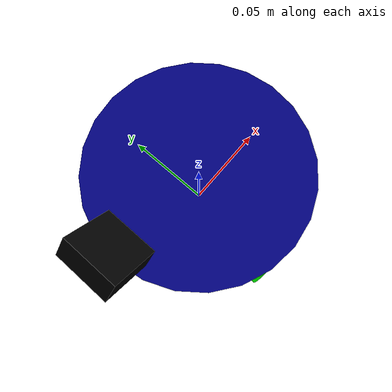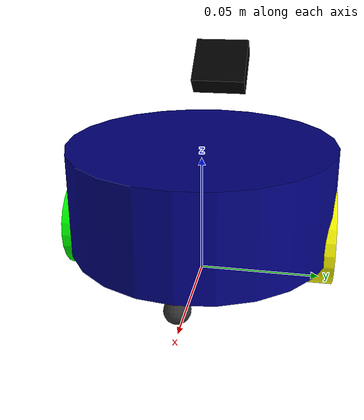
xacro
<?xml version="1.0"?>
<robot xmlns:xacro="http://www.ros.org/wiki/xacro" name="robot">

    <xacro:include filename="inertial_macros.xacro" />

    <!-- Robot body -->
    <xacro:property name="chassis_radius" value="0.055" />
    <xacro:property name="chassis_height" value="0.042" />
    <xacro:property name="chassis_elevation" value="0.015" />
    <xacro:property name="chassis_mass" value="0.3" />

    <!-- Robot wheels-->
    <!-- wheel_offset - how far, from the back, the wheel centre should be -->
    <xacro:property name="wheel_radius" value="0.02" />
    <xacro:property name="wheel_length" value="0.02" />
    <xacro:property name="wheel_mass" value="0.025" />

    <!-- Caster wheel -->
    <xacro:property name="caster_offset" value="0.05" />
    <xacro:property name="caster_radius" value="0.005" />
    <xacro:property name="caster_mass" value="0.01" />

    <!-- Camera sensor -->
    <xacro:property name="image_topic" value="camera/image_raw" />
    <xacro:property name="info_topic" value="camera/camera_info" />
    <xacro:property name="camera_fps" value="30" />
    <xacro:property name="image_width" value="1280" />
    <xacro:property name="image_height" value="720" />
    <xacro:property name="image_format" value="R8G8B8" />

    <!-- Camera physical properties -->
    <xacro:property name="camera_elevation" value="0.04" />
    <xacro:property name="camera_offset" value="0.0525" />
    <xacro:property name="camera_width" value="0.01" />
    <xacro:property name="camera_length" value="0.025" />
    <xacro:property name="camera_height" value="0.024" />
    <xacro:property name="camera_mass" value="0.01" />
    <xacro:property name="camera_pitch" value="${pi/4}" />

    <!-- Color  -->
    <xacro:property name="color_blue" value="0.0 0.0 0.5 1.0" />      <!-- blue -->
    <xacro:property name="color_yellow" value="1.0 1.0 0.0 1.0" />   <!-- yellow -->
    <xacro:property name="color_green" value="0.0 1.0 0.0 1.0" />  <!-- green -->
    <xacro:property name="color_gray" value="0.2 0.2 0.2 1.0" />       <!-- dark grey -->
    <xacro:property name="color_black" value="0.0 0.0 0.0 1.0" />       <!-- black -->

    <material name="blue">
        <color rgba="${color_blue}" />
    </material>

    <material name="yellow">
        <color rgba="${color_yellow}" />
    </material>

    <material name="green">
        <color rgba="${color_green}" />
    </material>

    <material name="gray">
        <color rgba="${color_gray}" />
    </material>

    <material name="black">
        <color rgba="${color_black}" />
    </material>

    <!-- Calculations -->
    <xacro:property name="wheel_separation" value="${0.07+wheel_radius}" />

    <xacro:include filename="gazebo_control.xacro" />

    <xacro:include filename="robot_core.xacro" />

    <xacro:include filename="camera.xacro" />
</robot>

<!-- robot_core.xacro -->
<robot xmlns:xacro="http://www.ros.org/wiki/xacro">

    <!-- BASE LINK -->
    <link name="base_link">
    </link>

    <!-- BASE FOOTPRINT LINK -->
    <joint name="base_footprint_joint" type="fixed">
        <parent link="base_link" />
        <child link="base_footprint" />
        <origin xyz="0 0 0" rpy="0 0 0" />
    </joint>

    <link name="base_footprint">
    </link>

    <!-- CHASSIS LINK -->

    <joint name="chassis_joint" type="fixed">
        <parent link="base_link" />
        <child link="chassis" />
        <origin xyz="0 0 ${chassis_elevation}" />
    </joint>

    <link name="chassis">
        <visual>
            <origin xyz="0 0 ${chassis_height/2}" />
            <geometry>
                <cylinder radius="${chassis_radius}" length="${chassis_height}" />
            </geometry>
            <material name="blue" />
        </visual>
        <collision>
            <origin xyz="0 0 ${chassis_height/2}" />
            <geometry>
                <cylinder radius="${chassis_radius}" length="${chassis_height}" />
            </geometry>
        </collision>
        <xacro:inertial_cylinder
            mass="${chassis_mass}"
            length="${chassis_height}"
            radius="${chassis_radius}">
            <origin xyz="0 0 0" rpy="0 0 0" />
        </xacro:inertial_cylinder>
    </link>

    <gazebo reference="chassis">
        <material>Gazebo/Blue</material>
    </gazebo>

    <!-- LEFT WHEEL LINK -->

    <joint name="right_wheel_joint" type="continuous">
        <parent link="base_link" />
        <child link="right_wheel" />
        <origin xyz="0 ${wheel_separation/2} ${wheel_radius}" rpy="${pi/2} 0 0" />
        <axis xyz="0 0 1" />
    </joint>

    <link name="right_wheel">
        <visual>
            <geometry>
                <cylinder
                    radius="${wheel_radius}"
                    length="${wheel_length}" />
            </geometry>
            <material name="yellow" />
        </visual>
        <collision>
            <geometry>
                <cylinder
                    radius="${wheel_radius}"
                    length="${wheel_length}" />
            </geometry>
        </collision>
        <xacro:inertial_cylinder
            mass="${wheel_mass}"
            length="${wheel_length}"
            radius="${wheel_radius}">
            <origin xyz="0 0 0" rpy="0 0 0" />
        </xacro:inertial_cylinder>
    </link>

    <gazebo reference="right_wheel">
        <material>Gazebo/Yellow</material>
    </gazebo>

    <!-- RIGHT WHEEL LINK -->

    <joint name="left_wheel_joint" type="continuous">
        <parent link="base_link" />
        <child link="left_wheel" />
        <origin xyz="0 -${wheel_separation/2} ${wheel_radius}" rpy="${pi/2} 0 0" />
        <axis xyz="0 0 1" />
    </joint>

    <link name="left_wheel">
        <visual>
            <geometry>
                <cylinder
                    radius="${wheel_radius}"
                    length="${wheel_length}" />
            </geometry>
            <material name="green" />
        </visual>
        <collision>
            <geometry>
                <cylinder
                    radius="${wheel_radius}"
                    length="${wheel_length}" />
            </geometry>
        </collision>
        <xacro:inertial_cylinder
            mass="${wheel_mass}"
            length="${wheel_length}"
            radius="${wheel_radius}">
            <origin xyz="0 0 0" rpy="0 0 0" />
        </xacro:inertial_cylinder>
    </link>

    <gazebo reference="left_wheel">
        <material>Gazebo/Green</material>
    </gazebo>

    <!-- FRONT CASTER  -->

    <joint name="caster_front_joint" type="fixed">
        <parent link="chassis" />
        <child link="caster_front" />
        <origin xyz="${caster_offset} 0 -${caster_radius}" rpy="0 0 0" />
    </joint>

    <link name="caster_front">
        <visual>
            <geometry>
                <sphere radius="${caster_radius}" />
            </geometry>
            <material name="gray" />
        </visual>
        <collision>
            <geometry>
                <sphere radius="${caster_radius}" />
            </geometry>
        </collision>
        <xacro:inertial_sphere
            mass="${caster_mass}"
            radius="${caster_radius}">
            <origin xyz="0 0 0" rpy="0 0 0" />
        </xacro:inertial_sphere>
    </link>

    <gazebo reference="caster_front">
        <material>Gazebo/Gray</material>
        <mu1 value="0.001" />
        <mu2 value="0.001" />
    </gazebo>

    <!-- FRONT CASTER  -->

    <joint name="caster_back_joint" type="fixed">
        <parent link="chassis" />
        <child link="caster_back" />
        <origin xyz="-${caster_offset} 0 -${caster_radius}" rpy="0 0 0" />
    </joint>

    <link name="caster_back">
        <visual>
            <geometry>
                <sphere radius="${caster_radius}" />
            </geometry>
            <material name="gray" />
        </visual>
        <collision>
            <geometry>
                <sphere radius="${caster_radius}" />
            </geometry>
        </collision>
        <xacro:inertial_sphere
            mass="${caster_mass}"
            radius="${caster_radius}">
            <origin xyz="0 0 0" rpy="0 0 0" />
        </xacro:inertial_sphere>
    </link>

    <gazebo reference="caster_back">
        <material>Gazebo/Gray</material>
        <mu1 value="0.001" />
        <mu2 value="0.001" />
    </gazebo>

</robot>

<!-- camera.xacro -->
<robot xmlns:xacro="http://www.ros.org/wiki/xacro">

    <plugin filename="gz-sim-sensors-system"
            name="gz::sim::systems::Sensors">
        <render_engine>ogre2</render_engine>
    </plugin>

    <!-- Fixed mount point on the chassis -->
    <joint name="camera_mount_joint" type="fixed">
        <parent link="chassis" />
        <child link="camera_mount_link" />

        <origin
            xyz="-${camera_offset} 0 ${camera_elevation}"
            rpy="0 0 ${pi}" />
    </joint>

    <!-- Invisible pivot link -->
    <link name="camera_mount_link" />

    <!-- Camera rotates around the bottom of the camera -->
    <joint name="camera_joint" type="fixed">
        <parent link="camera_mount_link" />
        <child link="camera_link" />

        <!-- Move from bottom of camera to its center -->
        <origin
            xyz="0 0 ${camera_height}"
            rpy="0 ${camera_pitch} 0" />
    </joint>

    <link name="camera_link">

        <visual>
            <geometry>
                <box size="${camera_width} ${camera_length} ${camera_height}" />
            </geometry>
            <material name="black" />
        </visual>

        <collision>
            <geometry>
                <box size="${camera_width} ${camera_length} ${camera_height}" />
            </geometry>
        </collision>

        <xacro:inertial_box
            mass="${camera_mass}"
            x="${camera_length}"
            y="${camera_width}"
            z="${camera_height}">

            <origin xyz="0 0 0" rpy="0 0 0" />
        </xacro:inertial_box>

    </link>

    <gazebo reference="camera_link">
        <material>Gazebo/Black</material>

        <sensor name="camera_sensor" type="camera">

            <pose>0 0 0 0 0 0</pose>

            <camera>
                <horizontal_fov>2.09</horizontal_fov>

                <image>
                    <width>${image_width}</width>
                    <height>${image_height}</height>
                    <format>${image_format}</format>
                </image>

                <clip>
                    <near>0.01</near>
                    <far>1000</far>
                </clip>

                <camera_info_topic>${info_topic}</camera_info_topic>
            </camera>

            <always_on>true</always_on>
            <update_rate>${camera_fps}</update_rate>
            <visualize>true</visualize>
            <topic>${image_topic}</topic>

        </sensor>
    </gazebo>

</robot>
